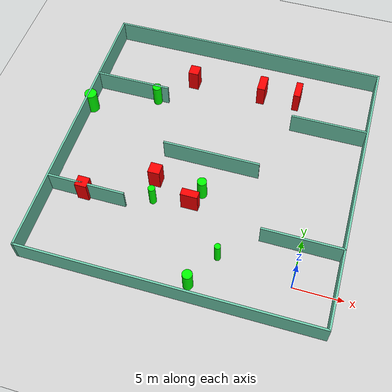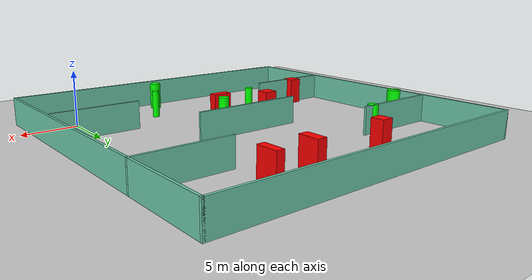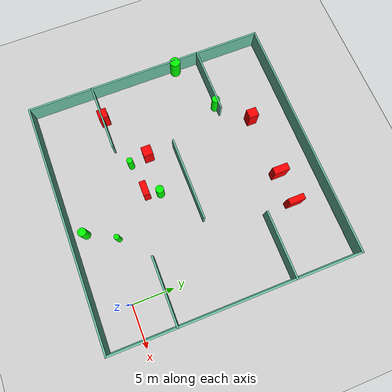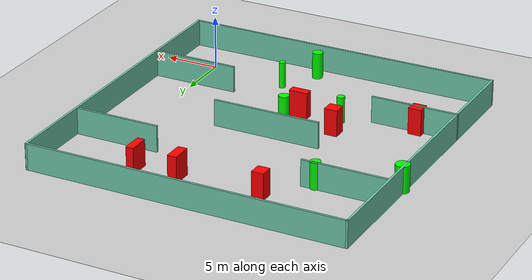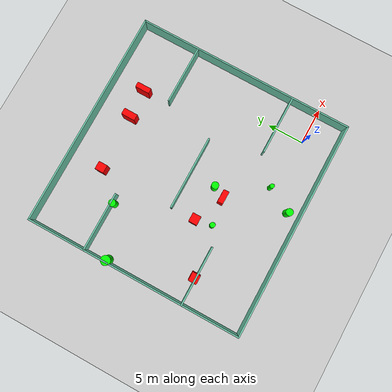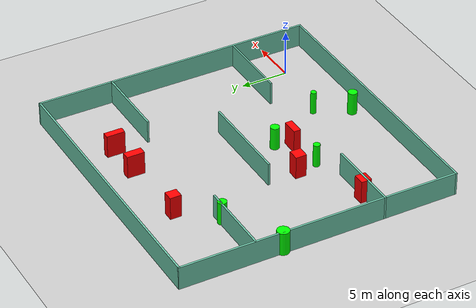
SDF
<sdf version="1.7">
 <world name="default">
  <light name="sun" type="directional">
   <pose>0 0 10 0 -0 0</pose>
   <diffuse>0.8 0.8 0.8 1</diffuse>
   <specular>0.2 0.2 0.2 1</specular>
   <attenuation>
    <range>1000</range>
    <constant>0.9</constant>
    <linear>0.01</linear>
    <quadratic>0.001</quadratic>
   </attenuation>
   <direction>-0.5 0.1 -0.9</direction>
   <spot><inner_angle>0</inner_angle><outer_angle>0</outer_angle><falloff>0</falloff></spot>
  </light>
  <model name="ground_plane">
   <static>1</static>
   <link name="link">
    <collision name="collision">
     <geometry><plane><normal>0 0 1</normal><size>100 100</size></plane></geometry>
     <surface>
      <contact><collide_bitmask>65535</collide_bitmask></contact>
      <friction><ode><mu>100</mu><mu2>50</mu2></ode></friction>
     </surface>
    </collision>
    <visual name="visual">
     <cast_shadows>0</cast_shadows>
     <geometry><plane><normal>0 0 1</normal><size>100 100</size></plane></geometry>
     <material>
      <script><uri>file://media/materials/scripts/gazebo.material</uri><name>Gazebo/Grey</name></script>
     </material>
    </visual>
   </link>
  </model>
  <gravity>0 0 -9.8</gravity>
  <magnetic_field>6e-06 2.3e-05 -4.2e-05</magnetic_field>
  <atmosphere type="adiabatic"/>
  <physics type="ode">
   <max_step_size>0.001</max_step_size>
   <real_time_factor>1</real_time_factor>
   <real_time_update_rate>1000</real_time_update_rate>
  </physics>
  <scene><ambient>0.4 0.4 0.4 1</ambient><background>0.7 0.7 0.7 1</background><shadows>1</shadows></scene>
  <spherical_coordinates>
   <surface_model>EARTH_WGS84</surface_model>
   <latitude_deg>0</latitude_deg>
   <longitude_deg>0</longitude_deg>
   <elevation>0</elevation>
   <heading_deg>0</heading_deg>
  </spherical_coordinates>
  <model name="my_base_walls">
   <link name="Wall_10">
    <collision name="Wall_10_Collision">
     <geometry><box><size>8.2 0.2 2.5</size></box></geometry>
     <pose>0 0 1.25 0 -0 0</pose>
    </collision>
    <visual name="Wall_10_Visual">
     <pose>0 0 1.25 0 -0 0</pose>
     <geometry><box><size>8.2 0.2 2.5</size></box></geometry>
     <material>
      <script><uri>file://media/materials/scripts/gazebo.material</uri><name>Gazebo/Grey</name></script>
      <ambient>0.435294 0.796078 0.67451 1</ambient>
     </material>
     <meta><layer>0</layer></meta>
    </visual>
    <pose>-11 -7 0 0 -0 0</pose>
   </link>
   <link name="Wall_12">
    <collision name="Wall_12_Collision">
     <geometry><box><size>8.2 0.2 2.5</size></box></geometry>
     <pose>0 0 1.25 0 -0 0</pose>
    </collision>
    <visual name="Wall_12_Visual">
     <pose>0 0 1.25 0 -0 0</pose>
     <geometry><box><size>8.2 0.2 2.5</size></box></geometry>
     <material>
      <script><uri>file://media/materials/scripts/gazebo.material</uri><name>Gazebo/Grey</name></script>
      <ambient>0.435294 0.796078 0.67451 1</ambient>
     </material>
     <meta><layer>0</layer></meta>
    </visual>
    <pose>-11 7 0 0 -0 0</pose>
   </link>
   <link name="Wall_14">
    <collision name="Wall_14_Collision">
     <geometry><box><size>8.2 0.2 2.5</size></box></geometry>
     <pose>0 0 1.25 0 -0 0</pose>
    </collision>
    <visual name="Wall_14_Visual">
     <pose>0 0 1.25 0 -0 0</pose>
     <geometry><box><size>8.2 0.2 2.5</size></box></geometry>
     <material>
      <script><uri>file://media/materials/scripts/gazebo.material</uri><name>Gazebo/Grey</name></script>
      <ambient>0.435294 0.796078 0.67451 1</ambient>
     </material>
     <meta><layer>0</layer></meta>
    </visual>
    <pose>11 7 0 0 -0 3.14159</pose>
   </link>
   <link name="Wall_16">
    <collision name="Wall_16_Collision">
     <geometry><box><size>10.2 0.2 2.5</size></box></geometry>
     <pose>0 0 1.25 0 -0 0</pose>
    </collision>
    <visual name="Wall_16_Visual">
     <pose>0 0 1.25 0 -0 0</pose>
     <geometry><box><size>10.2 0.2 2.5</size></box></geometry>
     <material>
      <script><uri>file://media/materials/scripts/gazebo.material</uri><name>Gazebo/Grey</name></script>
      <ambient>0.435294 0.796078 0.67451 1</ambient>
     </material>
     <meta><layer>0</layer></meta>
    </visual>
    <pose>0 0 0 0 -0 3.14159</pose>
   </link>
   <link name="Wall_2">
    <collision name="Wall_2_Collision">
     <geometry><box><size>30.2 0.2 2.5</size></box></geometry>
     <pose>0 0 1.25 0 -0 0</pose>
    </collision>
    <visual name="Wall_2_Visual">
     <pose>0 0 1.25 0 -0 0</pose>
     <geometry><box><size>30.2 0.2 2.5</size></box></geometry>
     <material>
      <script><uri>file://media/materials/scripts/gazebo.material</uri><name>Gazebo/Grey</name></script>
      <ambient>0.435294 0.796078 0.67451 1</ambient>
     </material>
     <meta><layer>0</layer></meta>
    </visual>
    <pose>0 -15 0 0 -0 3.14159</pose>
   </link>
   <link name="Wall_3">
    <collision name="Wall_3_Collision">
     <geometry><box><size>30.2 0.2 2.5</size></box></geometry>
     <pose>0 0 1.25 0 -0 0</pose>
    </collision>
    <visual name="Wall_3_Visual">
     <pose>0 0 1.25 0 -0 0</pose>
     <geometry><box><size>30.2 0.2 2.5</size></box></geometry>
     <material>
      <script><uri>file://media/materials/scripts/gazebo.material</uri><name>Gazebo/Grey</name></script>
      <ambient>0.435294 0.796078 0.67451 1</ambient>
     </material>
     <meta><layer>0</layer></meta>
    </visual>
    <pose>-15 0 0 0 -0 1.5708</pose>
   </link>
   <link name="Wall_4">
    <collision name="Wall_4_Collision">
     <geometry><box><size>30.2 0.2 2.5</size></box></geometry>
     <pose>0 0 1.25 0 -0 0</pose>
    </collision>
    <visual name="Wall_4_Visual">
     <pose>0 0 1.25 0 -0 0</pose>
     <geometry><box><size>30.2 0.2 2.5</size></box></geometry>
     <material>
      <script><uri>file://media/materials/scripts/gazebo.material</uri><name>Gazebo/Grey</name></script>
      <ambient>0.435294 0.796078 0.67451 1</ambient>
     </material>
     <meta><layer>0</layer></meta>
    </visual>
    <pose>0 15 0 0 -0 0</pose>
   </link>
   <link name="Wall_6">
    <collision name="Wall_6_Collision">
     <geometry><box><size>30.2 0.2 2.5</size></box></geometry>
     <pose>0 0 1.25 0 -0 0</pose>
    </collision>
    <visual name="Wall_6_Visual">
     <pose>0 0 1.25 0 -0 0</pose>
     <geometry><box><size>30.2 0.2 2.5</size></box></geometry>
     <material>
      <script><uri>file://media/materials/scripts/gazebo.material</uri><name>Gazebo/Grey</name></script>
      <ambient>0.435294 0.796078 0.67451 1</ambient>
     </material>
     <meta><layer>0</layer></meta>
    </visual>
    <pose>15 0 0 0 -0 1.5708</pose>
   </link>
   <link name="Wall_8">
    <collision name="Wall_8_Collision">
     <geometry><box><size>8.2 0.2 2.5</size></box></geometry>
     <pose>0 0 1.25 0 -0 0</pose>
    </collision>
    <visual name="Wall_8_Visual">
     <pose>0 0 1.25 0 -0 0</pose>
     <geometry><box><size>8.2 0.2 2.5</size></box></geometry>
     <material>
      <script><uri>file://media/materials/scripts/gazebo.material</uri><name>Gazebo/Grey</name></script>
      <ambient>0.435294 0.796078 0.67451 1</ambient>
     </material>
     <meta><layer>0</layer></meta>
    </visual>
    <pose>11 -7 0 0 -0 3.14159</pose>
   </link>
   <static>1</static>
   <pose>-11 11 0 0 -0 0</pose>
  </model>
  <model name="cylinder1">
   <static>1</static>
   <link name="link">
    <inertial>
     <mass>1</mass>
     <inertia><ixx>0.5</ixx><ixy>0</ixy><ixz>0</ixz><iyy>0.5</iyy><iyz>0</iyz><izz>1</izz></inertia>
    </inertial>
    <collision name="collision">
     <geometry><cylinder><radius>0.4948065452392421</radius><length>2.5</length></cylinder></geometry>
    </collision>
    <visual name="visual">
     <geometry><cylinder><radius>0.4948065452392421</radius><length>2.5</length></cylinder></geometry>
     <material>
      <ambient>0 1 0 1</ambient>
      <diffuse>0 1 0 1</diffuse>
      <specular>0.1 0.1 0.1 1</specular>
      <emissive>0 0 0 0</emissive>
     </material>
    </visual>
   </link>
   <pose>-9.384329366809911 -2.4407510077293 1.25 0 0 0</pose>
  </model>
  <model name="cylinder2">
   <static>1</static>
   <link name="link">
    <inertial>
     <mass>1</mass>
     <inertia><ixx>0.5</ixx><ixy>0</ixy><ixz>0</ixz><iyy>0.5</iyy><iyz>0</iyz><izz>1</izz></inertia>
    </inertial>
    <collision name="collision">
     <geometry><cylinder><radius>0.360620539299145</radius><length>2.5</length></cylinder></geometry>
    </collision>
    <visual name="visual">
     <geometry><cylinder><radius>0.360620539299145</radius><length>2.5</length></cylinder></geometry>
     <material>
      <ambient>0 1 0 1</ambient>
      <diffuse>0 1 0 1</diffuse>
      <specular>0.1 0.1 0.1 1</specular>
      <emissive>0 0 0 0</emissive>
     </material>
    </visual>
   </link>
   <pose>-15.47289897698004 5.318130115407026 1.25 0 0 0</pose>
  </model>
  <model name="cylinder3">
   <static>1</static>
   <link name="link">
    <inertial>
     <mass>1</mass>
     <inertia><ixx>0.5</ixx><ixy>0</ixy><ixz>0</ixz><iyy>0.5</iyy><iyz>0</iyz><izz>1</izz></inertia>
    </inertial>
    <collision name="collision">
     <geometry><cylinder><radius>0.6520630945368695</radius><length>2.5</length></cylinder></geometry>
    </collision>
    <visual name="visual">
     <geometry><cylinder><radius>0.6520630945368695</radius><length>2.5</length></cylinder></geometry>
     <material>
      <ambient>0 1 0 1</ambient>
      <diffuse>0 1 0 1</diffuse>
      <specular>0.1 0.1 0.1 1</specular>
      <emissive>0 0 0 0</emissive>
     </material>
    </visual>
   </link>
   <pose>-25.77835702025485 14.938530678828787 1.25 0 0 0</pose>
  </model>
  <model name="cylinder4">
   <static>1</static>
   <link name="link">
    <inertial>
     <mass>1</mass>
     <inertia><ixx>0.5</ixx><ixy>0</ixy><ixz>0</ixz><iyy>0.5</iyy><iyz>0</iyz><izz>1</izz></inertia>
    </inertial>
    <collision name="collision">
     <geometry><cylinder><radius>0.4772507820798717</radius><length>2.5</length></cylinder></geometry>
    </collision>
    <visual name="visual">
     <geometry><cylinder><radius>0.4772507820798717</radius><length>2.5</length></cylinder></geometry>
     <material>
      <ambient>0 1 0 1</ambient>
      <diffuse>0 1 0 1</diffuse>
      <specular>0.1 0.1 0.1 1</specular>
      <emissive>0 0 0 0</emissive>
     </material>
    </visual>
   </link>
   <pose>-19.133750761521057 17.79944927985499 1.25 0 0 0</pose>
  </model>
  <model name="cylinder5">
   <static>1</static>
   <link name="link">
    <inertial>
     <mass>1</mass>
     <inertia><ixx>0.5</ixx><ixy>0</ixy><ixz>0</ixz><iyy>0.5</iyy><iyz>0</iyz><izz>1</izz></inertia>
    </inertial>
    <collision name="collision">
     <geometry><cylinder><radius>0.48424806429163636</radius><length>2.5</length></cylinder></geometry>
    </collision>
    <visual name="visual">
     <geometry><cylinder><radius>0.48424806429163636</radius><length>2.5</length></cylinder></geometry>
     <material>
      <ambient>0 1 0 1</ambient>
      <diffuse>0 1 0 1</diffuse>
      <specular>0.1 0.1 0.1 1</specular>
      <emissive>0 0 0 0</emissive>
     </material>
    </visual>
   </link>
   <pose>-10.905827362307402 7.422856896260592 1.25 0 0 0</pose>
  </model>
  <model name="cylinder6">
   <static>1</static>
   <link name="link">
    <inertial>
     <mass>1</mass>
     <inertia><ixx>0.5</ixx><ixy>0</ixy><ixz>0</ixz><iyy>0.5</iyy><iyz>0</iyz><izz>1</izz></inertia>
    </inertial>
    <collision name="collision">
     <geometry><cylinder><radius>0.3086334481568552</radius><length>2.5</length></cylinder></geometry>
    </collision>
    <visual name="visual">
     <geometry><cylinder><radius>0.3086334481568552</radius><length>2.5</length></cylinder></geometry>
     <material>
      <ambient>0 1 0 1</ambient>
      <diffuse>0 1 0 1</diffuse>
      <specular>0.1 0.1 0.1 1</specular>
      <emissive>0 0 0 0</emissive>
     </material>
    </visual>
   </link>
   <pose>-7.492371894517197 1.022977296197089 1.25 0 0 0</pose>
  </model>
  <model name="box1">
   <static>1</static>
   <link name="link">
    <inertial>
     <mass>1</mass>
     <inertia><ixx>0.083</ixx><ixy>0</ixy><ixz>0</ixz><iyy>0.083</iyy><iyz>0</iyz><izz>0.083</izz></inertia>
    </inertial>
    <collision name="collision">
     <geometry><box><size>0.7129374921607093 1.9686381700501236 2.5</size></box></geometry>
    </collision>
    <visual name="visual">
     <geometry><box><size>0.7129374921607093 1.9686381700501236 2.5</size></box></geometry>
     <material>
      <ambient>1 0 0 1</ambient>
      <diffuse>1 0 0 1</diffuse>
      <specular>0.1 0.1 0.1 1</specular>
      <emissive>0 0 0 0</emissive>
     </material>
    </visual>
    <sensor name="my_contact" type="contact">
     <contact><collision>box_collision</collision><topic>__default_topic__</topic></contact>
    </sensor>
   </link>
   <pose>-4.139905708909646 21.738249938849865 1.25 0 0 0</pose>
  </model>
  <model name="box2">
   <static>1</static>
   <link name="link">
    <inertial>
     <mass>1</mass>
     <inertia><ixx>0.083</ixx><ixy>0</ixy><ixz>0</ixz><iyy>0.083</iyy><iyz>0</iyz><izz>0.083</izz></inertia>
    </inertial>
    <collision name="collision">
     <geometry><box><size>1.2322170442173759 1.1835836628323646 2.5</size></box></geometry>
    </collision>
    <visual name="visual">
     <geometry><box><size>1.2322170442173759 1.1835836628323646 2.5</size></box></geometry>
     <material>
      <ambient>1 0 0 1</ambient>
      <diffuse>1 0 0 1</diffuse>
      <specular>0.1 0.1 0.1 1</specular>
      <emissive>0 0 0 0</emissive>
     </material>
    </visual>
    <sensor name="my_contact" type="contact">
     <contact><collision>box_collision</collision><topic>__default_topic__</topic></contact>
    </sensor>
   </link>
   <pose>-15.882834573821546 7.639377918572439 1.25 0 0 0</pose>
  </model>
  <model name="box3">
   <static>1</static>
   <link name="link">
    <inertial>
     <mass>1</mass>
     <inertia><ixx>0.083</ixx><ixy>0</ixy><ixz>0</ixz><iyy>0.083</iyy><iyz>0</iyz><izz>0.083</izz></inertia>
    </inertial>
    <collision name="collision">
     <geometry><box><size>1.771753733947535 0.7752953260472953 2.5</size></box></geometry>
    </collision>
    <visual name="visual">
     <geometry><box><size>1.771753733947535 0.7752953260472953 2.5</size></box></geometry>
     <material>
      <ambient>1 0 0 1</ambient>
      <diffuse>1 0 0 1</diffuse>
      <specular>0.1 0.1 0.1 1</specular>
      <emissive>0 0 0 0</emissive>
     </material>
    </visual>
    <sensor name="my_contact" type="contact">
     <contact><collision>box_collision</collision><topic>__default_topic__</topic></contact>
    </sensor>
   </link>
   <pose>-11.686606051670733 5.817769401012628 1.25 0 0 0</pose>
  </model>
  <model name="box4">
   <static>1</static>
   <link name="link">
    <inertial>
     <mass>1</mass>
     <inertia><ixx>0.083</ixx><ixy>0</ixy><ixz>0</ixz><iyy>0.083</iyy><iyz>0</iyz><izz>0.083</izz></inertia>
    </inertial>
    <collision name="collision">
     <geometry><box><size>1.1091546981884988 1.213197475712878 2.5</size></box></geometry>
    </collision>
    <visual name="visual">
     <geometry><box><size>1.1091546981884988 1.213197475712878 2.5</size></box></geometry>
     <material>
      <ambient>1 0 0 1</ambient>
      <diffuse>1 0 0 1</diffuse>
      <specular>0.1 0.1 0.1 1</specular>
      <emissive>0 0 0 0</emissive>
     </material>
    </visual>
    <sensor name="my_contact" type="contact">
     <contact><collision>box_collision</collision><topic>__default_topic__</topic></contact>
    </sensor>
   </link>
   <pose>-15.851662863056486 21.312659248165815 1.25 0 0 0</pose>
  </model>
  <model name="box5">
   <static>1</static>
   <link name="link">
    <inertial>
     <mass>1</mass>
     <inertia><ixx>0.083</ixx><ixy>0</ixy><ixz>0</ixz><iyy>0.083</iyy><iyz>0</iyz><izz>0.083</izz></inertia>
    </inertial>
    <collision name="collision">
     <geometry><box><size>1.232326329097328 1.1407498578908697 2.5</size></box></geometry>
    </collision>
    <visual name="visual">
     <geometry><box><size>1.232326329097328 1.1407498578908697 2.5</size></box></geometry>
     <material>
      <ambient>1 0 0 1</ambient>
      <diffuse>1 0 0 1</diffuse>
      <specular>0.1 0.1 0.1 1</specular>
      <emissive>0 0 0 0</emissive>
     </material>
    </visual>
    <sensor name="my_contact" type="contact">
     <contact><collision>box_collision</collision><topic>__default_topic__</topic></contact>
    </sensor>
   </link>
   <pose>-22.336196936227452 4.166904924861842 1.25 0 0 0</pose>
  </model>
  <model name="box6">
   <static>1</static>
   <link name="link">
    <inertial>
     <mass>1</mass>
     <inertia><ixx>0.083</ixx><ixy>0</ixy><ixz>0</ixz><iyy>0.083</iyy><iyz>0</iyz><izz>0.083</izz></inertia>
    </inertial>
    <collision name="collision">
     <geometry><box><size>0.858427625241218 1.8896155115784417 2.5</size></box></geometry>
    </collision>
    <visual name="visual">
     <geometry><box><size>0.858427625241218 1.8896155115784417 2.5</size></box></geometry>
     <material>
      <ambient>1 0 0 1</ambient>
      <diffuse>1 0 0 1</diffuse>
      <specular>0.1 0.1 0.1 1</specular>
      <emissive>0 0 0 0</emissive>
     </material>
    </visual>
    <sensor name="my_contact" type="contact">
     <contact><collision>box_collision</collision><topic>__default_topic__</topic></contact>
    </sensor>
   </link>
   <pose>-8.098622302478713 21.572060316313134 1.25 0 0 0</pose>
  </model>
 </world>
</sdf>
